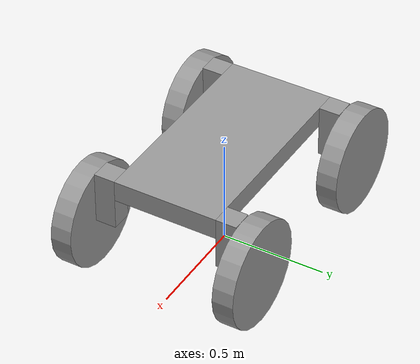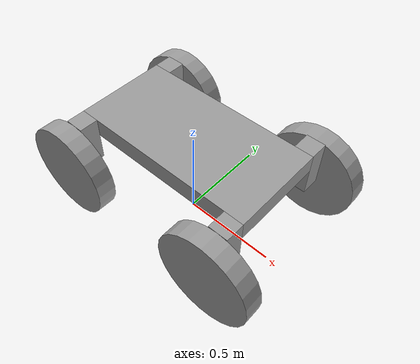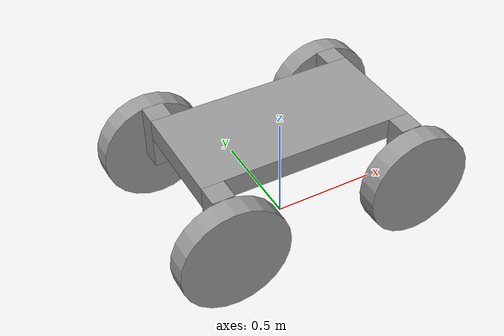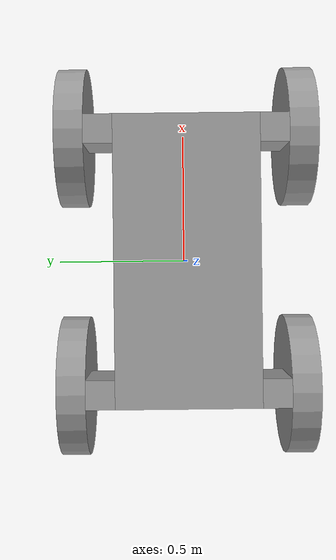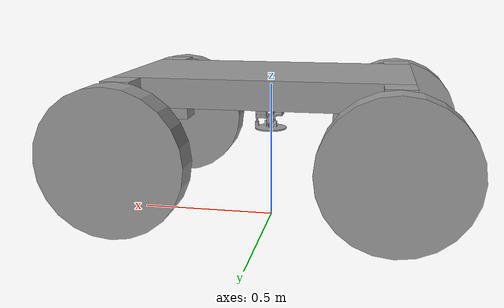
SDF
<?xml version='1.0'?>
<sdf version='1.7'>
  <model name='cart1'>
    <link name='link_0'>
      <inertial>
        <mass>1</mass>
        <inertia>
          <ixx>0.166667</ixx>
          <ixy>0</ixy>
          <ixz>0</ixz>
          <iyy>0.166667</iyy>
          <iyz>0</iyz>
          <izz>0.166667</izz>
        </inertia>
        <pose>0 0 0 0 -0 0</pose>
      </inertial>
      <pose>-0 0 0.5 0 -0 0</pose>
      <gravity>1</gravity>
      <self_collide>0</self_collide>
      <kinematic>0</kinematic>
      <enable_wind>0</enable_wind>
      <visual name='visual'>
        <pose>0 0 0 0 -0 0</pose>
        <geometry>
          <box>
            <size>1 0.5 0.1</size>
          </box>
        </geometry>
        <material>
          <lighting>1</lighting>
          <script>
            <uri>file://media/materials/scripts/gazebo.material</uri>
            <name>Gazebo/Grey</name>
          </script>
          <shader type='pixel'>
            <normal_map>__default__</normal_map>
          </shader>
          <ambient>0.3 0.3 0.3 1</ambient>
          <diffuse>0.7 0.7 0.7 1</diffuse>
          <specular>0.01 0.01 0.01 1</specular>
          <emissive>0 0 0 1</emissive>
        </material>
        <transparency>0</transparency>
        <cast_shadows>1</cast_shadows>
      </visual>
      <collision name='collision'>
        <laser_retro>0</laser_retro>
        <max_contacts>10</max_contacts>
        <pose>0 0 0 0 -0 0</pose>
        <geometry>
          <box>
            <size>1 0.5 0.1</size>
          </box>
        </geometry>
        <surface>
          <friction>
            <ode>
              <mu>1</mu>
              <mu2>1</mu2>
              <fdir1>0 0 0</fdir1>
              <slip1>0</slip1>
              <slip2>0</slip2>
            </ode>
            <torsional>
              <coefficient>1</coefficient>
              <patch_radius>0</patch_radius>
              <surface_radius>0</surface_radius>
              <use_patch_radius>1</use_patch_radius>
              <ode>
                <slip>0</slip>
              </ode>
            </torsional>
          </friction>
          <bounce>
            <restitution_coefficient>0</restitution_coefficient>
            <threshold>1e+06</threshold>
          </bounce>
          <contact>
            <collide_without_contact>0</collide_without_contact>
            <collide_without_contact_bitmask>1</collide_without_contact_bitmask>
            <collide_bitmask>1</collide_bitmask>
            <ode>
              <soft_cfm>0</soft_cfm>
              <soft_erp>0.2</soft_erp>
              <kp>1e+13</kp>
              <kd>1</kd>
              <max_vel>0.01</max_vel>
              <min_depth>0</min_depth>
            </ode>
            <bullet>
              <split_impulse>1</split_impulse>
              <split_impulse_penetration_threshold>-0.01</split_impulse_penetration_threshold>
              <soft_cfm>0</soft_cfm>
              <soft_erp>0.2</soft_erp>
              <kp>1e+13</kp>
              <kd>1</kd>
            </bullet>
          </contact>
        </surface>
      </collision>
    </link>
    <link name='link_0_0_clone'>
      <inertial>
        <mass>0.05</mass>
        <inertia>
          <ixx>0.00833333</ixx>
          <ixy>0</ixy>
          <ixz>0</ixz>
          <iyy>0.00833333</iyy>
          <iyz>0</iyz>
          <izz>0.00833333</izz>
        </inertia>
        <pose>0 0 0 0 -0 0</pose>
      </inertial>
      <pose>-0.45 -0.3 0.425 0 -0 0</pose>
      <gravity>1</gravity>
      <self_collide>0</self_collide>
      <kinematic>0</kinematic>
      <enable_wind>0</enable_wind>
      <visual name='visual_0'>
        <pose>0 0 0 0 -0 0</pose>
        <geometry>
          <box>
            <size>0.1 0.1 0.25</size>
          </box>
        </geometry>
        <material>
          <lighting>1</lighting>
          <script>
            <uri>file://media/materials/scripts/gazebo.material</uri>
            <name>Gazebo/Grey</name>
          </script>
          <shader type='pixel'>
            <normal_map>__default__</normal_map>
          </shader>
          <ambient>0.3 0.3 0.3 1</ambient>
          <diffuse>0.7 0.7 0.7 1</diffuse>
          <specular>0.01 0.01 0.01 1</specular>
          <emissive>0 0 0 1</emissive>
        </material>
        <transparency>0</transparency>
        <cast_shadows>1</cast_shadows>
      </visual>
      <collision name='collision'>
        <laser_retro>0</laser_retro>
        <max_contacts>10</max_contacts>
        <pose>0 0 0 0 -0 0</pose>
        <geometry>
          <box>
            <size>0.1 0.1 0.25</size>
          </box>
        </geometry>
        <surface>
          <friction>
            <ode>
              <mu>1</mu>
              <mu2>1</mu2>
              <fdir1>0 0 0</fdir1>
              <slip1>0</slip1>
              <slip2>0</slip2>
            </ode>
            <torsional>
              <coefficient>1</coefficient>
              <patch_radius>0</patch_radius>
              <surface_radius>0</surface_radius>
              <use_patch_radius>1</use_patch_radius>
              <ode>
                <slip>0</slip>
              </ode>
            </torsional>
          </friction>
          <bounce>
            <restitution_coefficient>0</restitution_coefficient>
            <threshold>1e+06</threshold>
          </bounce>
          <contact>
            <collide_without_contact>0</collide_without_contact>
            <collide_without_contact_bitmask>1</collide_without_contact_bitmask>
            <collide_bitmask>1</collide_bitmask>
            <ode>
              <soft_cfm>0</soft_cfm>
              <soft_erp>0.2</soft_erp>
              <kp>1e+13</kp>
              <kd>1</kd>
              <max_vel>0.01</max_vel>
              <min_depth>0</min_depth>
            </ode>
            <bullet>
              <split_impulse>1</split_impulse>
              <split_impulse_penetration_threshold>-0.01</split_impulse_penetration_threshold>
              <soft_cfm>0</soft_cfm>
              <soft_erp>0.2</soft_erp>
              <kp>1e+13</kp>
              <kd>1</kd>
            </bullet>
          </contact>
        </surface>
      </collision>
    </link>
    <link name='link_0_0_clone_0'>
      <inertial>
        <mass>0.05</mass>
        <inertia>
          <ixx>0.00833333</ixx>
          <ixy>0</ixy>
          <ixz>0</ixz>
          <iyy>0.00833333</iyy>
          <iyz>0</iyz>
          <izz>0.00833333</izz>
        </inertia>
        <pose>0 0 0 0 -0 0</pose>
      </inertial>
      <pose>0.45 -0.3 0.425 0 -0 0</pose>
      <gravity>1</gravity>
      <self_collide>0</self_collide>
      <kinematic>0</kinematic>
      <enable_wind>0</enable_wind>
      <visual name='visual_0'>
        <pose>0 0 0 0 -0 0</pose>
        <geometry>
          <box>
            <size>0.1 0.1 0.25</size>
          </box>
        </geometry>
        <material>
          <lighting>1</lighting>
          <script>
            <uri>file://media/materials/scripts/gazebo.material</uri>
            <name>Gazebo/Grey</name>
          </script>
          <shader type='pixel'>
            <normal_map>__default__</normal_map>
          </shader>
          <ambient>0.3 0.3 0.3 1</ambient>
          <diffuse>0.7 0.7 0.7 1</diffuse>
          <specular>0.01 0.01 0.01 1</specular>
          <emissive>0 0 0 1</emissive>
        </material>
        <transparency>0</transparency>
        <cast_shadows>1</cast_shadows>
      </visual>
      <collision name='collision'>
        <laser_retro>0</laser_retro>
        <max_contacts>10</max_contacts>
        <pose>0 0 0 0 -0 0</pose>
        <geometry>
          <box>
            <size>0.1 0.1 0.25</size>
          </box>
        </geometry>
        <surface>
          <friction>
            <ode>
              <mu>1</mu>
              <mu2>1</mu2>
              <fdir1>0 0 0</fdir1>
              <slip1>0</slip1>
              <slip2>0</slip2>
            </ode>
            <torsional>
              <coefficient>1</coefficient>
              <patch_radius>0</patch_radius>
              <surface_radius>0</surface_radius>
              <use_patch_radius>1</use_patch_radius>
              <ode>
                <slip>0</slip>
              </ode>
            </torsional>
          </friction>
          <bounce>
            <restitution_coefficient>0</restitution_coefficient>
            <threshold>1e+06</threshold>
          </bounce>
          <contact>
            <collide_without_contact>0</collide_without_contact>
            <collide_without_contact_bitmask>1</collide_without_contact_bitmask>
            <collide_bitmask>1</collide_bitmask>
            <ode>
              <soft_cfm>0</soft_cfm>
              <soft_erp>0.2</soft_erp>
              <kp>1e+13</kp>
              <kd>1</kd>
              <max_vel>0.01</max_vel>
              <min_depth>0</min_depth>
            </ode>
            <bullet>
              <split_impulse>1</split_impulse>
              <split_impulse_penetration_threshold>-0.01</split_impulse_penetration_threshold>
              <soft_cfm>0</soft_cfm>
              <soft_erp>0.2</soft_erp>
              <kp>1e+13</kp>
              <kd>1</kd>
            </bullet>
          </contact>
        </surface>
      </collision>
    </link>
    <link name='link_0_0_clone_1'>
      <inertial>
        <mass>0.05</mass>
        <inertia>
          <ixx>0.00833333</ixx>
          <ixy>0</ixy>
          <ixz>0</ixz>
          <iyy>0.00833333</iyy>
          <iyz>0</iyz>
          <izz>0.00833333</izz>
        </inertia>
        <pose>0 0 0 0 -0 0</pose>
      </inertial>
      <pose>0.45 0.3 0.425 0 -0 0</pose>
      <gravity>1</gravity>
      <self_collide>0</self_collide>
      <kinematic>0</kinematic>
      <enable_wind>0</enable_wind>
      <visual name='visual_0'>
        <pose>0 0 0 0 -0 0</pose>
        <geometry>
          <box>
            <size>0.1 0.1 0.25</size>
          </box>
        </geometry>
        <material>
          <lighting>1</lighting>
          <script>
            <uri>file://media/materials/scripts/gazebo.material</uri>
            <name>Gazebo/Grey</name>
          </script>
          <shader type='pixel'>
            <normal_map>__default__</normal_map>
          </shader>
          <ambient>0.3 0.3 0.3 1</ambient>
          <diffuse>0.7 0.7 0.7 1</diffuse>
          <specular>0.01 0.01 0.01 1</specular>
          <emissive>0 0 0 1</emissive>
        </material>
        <transparency>0</transparency>
        <cast_shadows>1</cast_shadows>
      </visual>
      <collision name='collision'>
        <laser_retro>0</laser_retro>
        <max_contacts>10</max_contacts>
        <pose>0 0 0 0 -0 0</pose>
        <geometry>
          <box>
            <size>0.1 0.1 0.25</size>
          </box>
        </geometry>
        <surface>
          <friction>
            <ode>
              <mu>1</mu>
              <mu2>1</mu2>
              <fdir1>0 0 0</fdir1>
              <slip1>0</slip1>
              <slip2>0</slip2>
            </ode>
            <torsional>
              <coefficient>1</coefficient>
              <patch_radius>0</patch_radius>
              <surface_radius>0</surface_radius>
              <use_patch_radius>1</use_patch_radius>
              <ode>
                <slip>0</slip>
              </ode>
            </torsional>
          </friction>
          <bounce>
            <restitution_coefficient>0</restitution_coefficient>
            <threshold>1e+06</threshold>
          </bounce>
          <contact>
            <collide_without_contact>0</collide_without_contact>
            <collide_without_contact_bitmask>1</collide_without_contact_bitmask>
            <collide_bitmask>1</collide_bitmask>
            <ode>
              <soft_cfm>0</soft_cfm>
              <soft_erp>0.2</soft_erp>
              <kp>1e+13</kp>
              <kd>1</kd>
              <max_vel>0.01</max_vel>
              <min_depth>0</min_depth>
            </ode>
            <bullet>
              <split_impulse>1</split_impulse>
              <split_impulse_penetration_threshold>-0.01</split_impulse_penetration_threshold>
              <soft_cfm>0</soft_cfm>
              <soft_erp>0.2</soft_erp>
              <kp>1e+13</kp>
              <kd>1</kd>
            </bullet>
          </contact>
        </surface>
      </collision>
    </link>
    <link name='link_0_0_clone_2'>
      <inertial>
        <mass>0.05</mass>
        <inertia>
          <ixx>0.00833333</ixx>
          <ixy>0</ixy>
          <ixz>0</ixz>
          <iyy>0.00833333</iyy>
          <iyz>0</iyz>
          <izz>0.00833333</izz>
        </inertia>
        <pose>0 0 0 0 -0 0</pose>
      </inertial>
      <pose>-0.45 0.3 0.425 0 -0 0</pose>
      <gravity>1</gravity>
      <self_collide>0</self_collide>
      <kinematic>0</kinematic>
      <enable_wind>0</enable_wind>
      <visual name='visual_0'>
        <pose>0 0 0 0 -0 0</pose>
        <geometry>
          <box>
            <size>0.1 0.1 0.25</size>
          </box>
        </geometry>
        <material>
          <lighting>1</lighting>
          <script>
            <uri>file://media/materials/scripts/gazebo.material</uri>
            <name>Gazebo/Grey</name>
          </script>
          <shader type='pixel'>
            <normal_map>__default__</normal_map>
          </shader>
          <ambient>0.3 0.3 0.3 1</ambient>
          <diffuse>0.7 0.7 0.7 1</diffuse>
          <specular>0.01 0.01 0.01 1</specular>
          <emissive>0 0 0 1</emissive>
        </material>
        <transparency>0</transparency>
        <cast_shadows>1</cast_shadows>
      </visual>
      <collision name='collision'>
        <laser_retro>0</laser_retro>
        <max_contacts>10</max_contacts>
        <pose>0 0 0 0 -0 0</pose>
        <geometry>
          <box>
            <size>0.1 0.1 0.25</size>
          </box>
        </geometry>
        <surface>
          <friction>
            <ode>
              <mu>1</mu>
              <mu2>1</mu2>
              <fdir1>0 0 0</fdir1>
              <slip1>0</slip1>
              <slip2>0</slip2>
            </ode>
            <torsional>
              <coefficient>1</coefficient>
              <patch_radius>0</patch_radius>
              <surface_radius>0</surface_radius>
              <use_patch_radius>1</use_patch_radius>
              <ode>
                <slip>0</slip>
              </ode>
            </torsional>
          </friction>
          <bounce>
            <restitution_coefficient>0</restitution_coefficient>
            <threshold>1e+06</threshold>
          </bounce>
          <contact>
            <collide_without_contact>0</collide_without_contact>
            <collide_without_contact_bitmask>1</collide_without_contact_bitmask>
            <collide_bitmask>1</collide_bitmask>
            <ode>
              <soft_cfm>0</soft_cfm>
              <soft_erp>0.2</soft_erp>
              <kp>1e+13</kp>
              <kd>1</kd>
              <max_vel>0.01</max_vel>
              <min_depth>0</min_depth>
            </ode>
            <bullet>
              <split_impulse>1</split_impulse>
              <split_impulse_penetration_threshold>-0.01</split_impulse_penetration_threshold>
              <soft_cfm>0</soft_cfm>
              <soft_erp>0.2</soft_erp>
              <kp>1e+13</kp>
              <kd>1</kd>
            </bullet>
          </contact>
        </surface>
      </collision>
    </link>
    <link name='link_2_clone'>
      <inertial>
        <mass>0.1</mass>
        <inertia>
          <ixx>0.0145833</ixx>
          <ixy>0</ixy>
          <ixz>0</ixz>
          <iyy>0.0145833</iyy>
          <iyz>0</iyz>
          <izz>0.0125</izz>
        </inertia>
        <pose>0 0 0 0 -0 0</pose>
      </inertial>
      <pose>-0.45 0.400024 0.3 1.5707 -0 0</pose>
      <gravity>1</gravity>
      <self_collide>0</self_collide>
      <kinematic>0</kinematic>
      <enable_wind>0</enable_wind>
      <visual name='visual'>
        <pose>0 0 0 0 -0 0</pose>
        <geometry>
          <cylinder>
            <radius>0.25</radius>
            <length>0.1</length>
          </cylinder>
        </geometry>
        <material>
          <lighting>1</lighting>
          <script>
            <uri>file://media/materials/scripts/gazebo.material</uri>
            <name>Gazebo/Grey</name>
          </script>
          <shader type='pixel'>
            <normal_map>__default__</normal_map>
          </shader>
          <ambient>0.3 0.3 0.3 1</ambient>
          <diffuse>0.7 0.7 0.7 1</diffuse>
          <specular>0.01 0.01 0.01 1</specular>
          <emissive>0 0 0 1</emissive>
        </material>
        <transparency>0</transparency>
        <cast_shadows>1</cast_shadows>
      </visual>
      <collision name='collision'>
        <laser_retro>0</laser_retro>
        <max_contacts>10</max_contacts>
        <pose>0 0 0 0 -0 0</pose>
        <geometry>
          <cylinder>
            <radius>0.25</radius>
            <length>0.1</length>
          </cylinder>
        </geometry>
        <surface>
          <friction>
            <ode>
              <mu>1</mu>
              <mu2>1</mu2>
              <fdir1>0 0 0</fdir1>
              <slip1>0</slip1>
              <slip2>0</slip2>
            </ode>
            <torsional>
              <coefficient>1</coefficient>
              <patch_radius>0</patch_radius>
              <surface_radius>0</surface_radius>
              <use_patch_radius>1</use_patch_radius>
              <ode>
                <slip>0</slip>
              </ode>
            </torsional>
          </friction>
          <bounce>
            <restitution_coefficient>0</restitution_coefficient>
            <threshold>1e+06</threshold>
          </bounce>
          <contact>
            <collide_without_contact>0</collide_without_contact>
            <collide_without_contact_bitmask>1</collide_without_contact_bitmask>
            <collide_bitmask>1</collide_bitmask>
            <ode>
              <soft_cfm>0</soft_cfm>
              <soft_erp>0.2</soft_erp>
              <kp>1e+13</kp>
              <kd>1</kd>
              <max_vel>0.01</max_vel>
              <min_depth>0</min_depth>
            </ode>
            <bullet>
              <split_impulse>1</split_impulse>
              <split_impulse_penetration_threshold>-0.01</split_impulse_penetration_threshold>
              <soft_cfm>0</soft_cfm>
              <soft_erp>0.2</soft_erp>
              <kp>1e+13</kp>
              <kd>1</kd>
            </bullet>
          </contact>
        </surface>
      </collision>
    </link>
    <link name='link_2_clone_0'>
      <inertial>
        <mass>0.1</mass>
        <inertia>
          <ixx>0.0145833</ixx>
          <ixy>0</ixy>
          <ixz>0</ixz>
          <iyy>0.0145833</iyy>
          <iyz>0</iyz>
          <izz>0.0125</izz>
        </inertia>
        <pose>0 0 0 0 -0 0</pose>
      </inertial>
      <pose>-0.45 -0.400024 0.3 1.5707 -0 0</pose>
      <gravity>1</gravity>
      <self_collide>0</self_collide>
      <kinematic>0</kinematic>
      <enable_wind>0</enable_wind>
      <visual name='visual'>
        <pose>0 0 0 0 -0 0</pose>
        <geometry>
          <cylinder>
            <radius>0.25</radius>
            <length>0.1</length>
          </cylinder>
        </geometry>
        <material>
          <lighting>1</lighting>
          <script>
            <uri>file://media/materials/scripts/gazebo.material</uri>
            <name>Gazebo/Grey</name>
          </script>
          <shader type='pixel'>
            <normal_map>__default__</normal_map>
          </shader>
          <ambient>0.3 0.3 0.3 1</ambient>
          <diffuse>0.7 0.7 0.7 1</diffuse>
          <specular>0.01 0.01 0.01 1</specular>
          <emissive>0 0 0 1</emissive>
        </material>
        <transparency>0</transparency>
        <cast_shadows>1</cast_shadows>
      </visual>
      <collision name='collision'>
        <laser_retro>0</laser_retro>
        <max_contacts>10</max_contacts>
        <pose>0 0 0 0 -0 0</pose>
        <geometry>
          <cylinder>
            <radius>0.25</radius>
            <length>0.1</length>
          </cylinder>
        </geometry>
        <surface>
          <friction>
            <ode>
              <mu>1</mu>
              <mu2>1</mu2>
              <fdir1>0 0 0</fdir1>
              <slip1>0</slip1>
              <slip2>0</slip2>
            </ode>
            <torsional>
              <coefficient>1</coefficient>
              <patch_radius>0</patch_radius>
              <surface_radius>0</surface_radius>
              <use_patch_radius>1</use_patch_radius>
              <ode>
                <slip>0</slip>
              </ode>
            </torsional>
          </friction>
          <bounce>
            <restitution_coefficient>0</restitution_coefficient>
            <threshold>1e+06</threshold>
          </bounce>
          <contact>
            <collide_without_contact>0</collide_without_contact>
            <collide_without_contact_bitmask>1</collide_without_contact_bitmask>
            <collide_bitmask>1</collide_bitmask>
            <ode>
              <soft_cfm>0</soft_cfm>
              <soft_erp>0.2</soft_erp>
              <kp>1e+13</kp>
              <kd>1</kd>
              <max_vel>0.01</max_vel>
              <min_depth>0</min_depth>
            </ode>
            <bullet>
              <split_impulse>1</split_impulse>
              <split_impulse_penetration_threshold>-0.01</split_impulse_penetration_threshold>
              <soft_cfm>0</soft_cfm>
              <soft_erp>0.2</soft_erp>
              <kp>1e+13</kp>
              <kd>1</kd>
            </bullet>
          </contact>
        </surface>
      </collision>
    </link>
    <link name='link_2_clone_1'>
      <inertial>
        <mass>0.1</mass>
        <inertia>
          <ixx>0.0145833</ixx>
          <ixy>0</ixy>
          <ixz>0</ixz>
          <iyy>0.0145833</iyy>
          <iyz>0</iyz>
          <izz>0.0125</izz>
        </inertia>
        <pose>0 0 0 0 -0 0</pose>
      </inertial>
      <pose>0.45 -0.400024 0.3 1.5707 -0 0</pose>
      <gravity>1</gravity>
      <self_collide>0</self_collide>
      <kinematic>0</kinematic>
      <enable_wind>0</enable_wind>
      <visual name='visual'>
        <pose>0 0 0 0 -0 0</pose>
        <geometry>
          <cylinder>
            <radius>0.25</radius>
            <length>0.1</length>
          </cylinder>
        </geometry>
        <material>
          <lighting>1</lighting>
          <script>
            <uri>file://media/materials/scripts/gazebo.material</uri>
            <name>Gazebo/Grey</name>
          </script>
          <shader type='pixel'>
            <normal_map>__default__</normal_map>
          </shader>
          <ambient>0.3 0.3 0.3 1</ambient>
          <diffuse>0.7 0.7 0.7 1</diffuse>
          <specular>0.01 0.01 0.01 1</specular>
          <emissive>0 0 0 1</emissive>
        </material>
        <transparency>0</transparency>
        <cast_shadows>1</cast_shadows>
      </visual>
      <collision name='collision'>
        <laser_retro>0</laser_retro>
        <max_contacts>10</max_contacts>
        <pose>0 0 0 0 -0 0</pose>
        <geometry>
          <cylinder>
            <radius>0.25</radius>
            <length>0.1</length>
          </cylinder>
        </geometry>
        <surface>
          <friction>
            <ode>
              <mu>1</mu>
              <mu2>1</mu2>
              <fdir1>0 0 0</fdir1>
              <slip1>0</slip1>
              <slip2>0</slip2>
            </ode>
            <torsional>
              <coefficient>1</coefficient>
              <patch_radius>0</patch_radius>
              <surface_radius>0</surface_radius>
              <use_patch_radius>1</use_patch_radius>
              <ode>
                <slip>0</slip>
              </ode>
            </torsional>
          </friction>
          <bounce>
            <restitution_coefficient>0</restitution_coefficient>
            <threshold>1e+06</threshold>
          </bounce>
          <contact>
            <collide_without_contact>0</collide_without_contact>
            <collide_without_contact_bitmask>1</collide_without_contact_bitmask>
            <collide_bitmask>1</collide_bitmask>
            <ode>
              <soft_cfm>0</soft_cfm>
              <soft_erp>0.2</soft_erp>
              <kp>1e+13</kp>
              <kd>1</kd>
              <max_vel>0.01</max_vel>
              <min_depth>0</min_depth>
            </ode>
            <bullet>
              <split_impulse>1</split_impulse>
              <split_impulse_penetration_threshold>-0.01</split_impulse_penetration_threshold>
              <soft_cfm>0</soft_cfm>
              <soft_erp>0.2</soft_erp>
              <kp>1e+13</kp>
              <kd>1</kd>
            </bullet>
          </contact>
        </surface>
      </collision>
    </link>
    <link name='link_2_clone_2'>
      <inertial>
        <mass>0.1</mass>
        <inertia>
          <ixx>0.0145833</ixx>
          <ixy>0</ixy>
          <ixz>0</ixz>
          <iyy>0.0145833</iyy>
          <iyz>0</iyz>
          <izz>0.0125</izz>
        </inertia>
        <pose>0 0 0 0 -0 0</pose>
      </inertial>
      <pose>0.45 0.400024 0.3 1.5707 -0 0</pose>
      <gravity>1</gravity>
      <self_collide>0</self_collide>
      <kinematic>0</kinematic>
      <enable_wind>0</enable_wind>
      <visual name='visual'>
        <pose>0 0 0 0 -0 0</pose>
        <geometry>
          <cylinder>
            <radius>0.25</radius>
            <length>0.1</length>
          </cylinder>
        </geometry>
        <material>
          <lighting>1</lighting>
          <script>
            <uri>file://media/materials/scripts/gazebo.material</uri>
            <name>Gazebo/Grey</name>
          </script>
          <shader type='pixel'>
            <normal_map>__default__</normal_map>
          </shader>
          <ambient>0.3 0.3 0.3 1</ambient>
          <diffuse>0.7 0.7 0.7 1</diffuse>
          <specular>0.01 0.01 0.01 1</specular>
          <emissive>0 0 0 1</emissive>
        </material>
        <transparency>0</transparency>
        <cast_shadows>1</cast_shadows>
      </visual>
      <collision name='collision'>
        <laser_retro>0</laser_retro>
        <max_contacts>10</max_contacts>
        <pose>0 0 0 0 -0 0</pose>
        <geometry>
          <cylinder>
            <radius>0.25</radius>
            <length>0.1</length>
          </cylinder>
        </geometry>
        <surface>
          <friction>
            <ode>
              <mu>1</mu>
              <mu2>1</mu2>
              <fdir1>0 0 0</fdir1>
              <slip1>0</slip1>
              <slip2>0</slip2>
            </ode>
            <torsional>
              <coefficient>1</coefficient>
              <patch_radius>0</patch_radius>
              <surface_radius>0</surface_radius>
              <use_patch_radius>1</use_patch_radius>
              <ode>
                <slip>0</slip>
              </ode>
            </torsional>
          </friction>
          <bounce>
            <restitution_coefficient>0</restitution_coefficient>
            <threshold>1e+06</threshold>
          </bounce>
          <contact>
            <collide_without_contact>0</collide_without_contact>
            <collide_without_contact_bitmask>1</collide_without_contact_bitmask>
            <collide_bitmask>1</collide_bitmask>
            <ode>
              <soft_cfm>0</soft_cfm>
              <soft_erp>0.2</soft_erp>
              <kp>1e+13</kp>
              <kd>1</kd>
              <max_vel>0.01</max_vel>
              <min_depth>0</min_depth>
            </ode>
            <bullet>
              <split_impulse>1</split_impulse>
              <split_impulse_penetration_threshold>-0.01</split_impulse_penetration_threshold>
              <soft_cfm>0</soft_cfm>
              <soft_erp>0.2</soft_erp>
              <kp>1e+13</kp>
              <kd>1</kd>
            </bullet>
          </contact>
        </surface>
      </collision>
    </link>
    <joint name='front_right' type='revolute'>
      <parent>link_0_0_clone_0</parent>
      <child>link_2_clone_1</child>
      <pose>0 0 0 0 -0 0</pose>
      <axis>
        <xyz>0 0 -1</xyz>
        <limit>
          <lower>-1.79769e+308</lower>
          <upper>1.79769e+308</upper>
          <effort>-1</effort>
          <velocity>-1</velocity>
        </limit>
        <dynamics>
          <spring_reference>0</spring_reference>
          <spring_stiffness>0</spring_stiffness>
          <damping>0</damping>
          <friction>0</friction>
        </dynamics>
      </axis>
      <physics>
        <ode>
          <limit>
            <cfm>0</cfm>
            <erp>0.2</erp>
          </limit>
          <suspension>
            <cfm>0</cfm>
            <erp>0.2</erp>
          </suspension>
        </ode>
      </physics>
    </joint>
    <joint name='front_left' type='revolute'>
      <parent>link_0_0_clone_1</parent>
      <child>link_2_clone_2</child>
      <pose>0 0 0 0 -0 0</pose>
      <axis>
        <xyz>0 0 -1</xyz>
        <limit>
          <lower>-1.79769e+308</lower>
          <upper>1.79769e+308</upper>
          <effort>-1</effort>
          <velocity>-1</velocity>
        </limit>
        <dynamics>
          <spring_reference>0</spring_reference>
          <spring_stiffness>0</spring_stiffness>
          <damping>0</damping>
          <friction>0</friction>
        </dynamics>
      </axis>
      <physics>
        <ode>
          <limit>
            <cfm>0</cfm>
            <erp>0.2</erp>
          </limit>
          <suspension>
            <cfm>0</cfm>
            <erp>0.2</erp>
          </suspension>
        </ode>
      </physics>
    </joint>
    <joint name='back_left' type='revolute'>
      <parent>link_0_0_clone_2</parent>
      <child>link_2_clone</child>
      <pose>0 0 0 0 -0 0</pose>
      <axis>
        <xyz>0 0 -1</xyz>
        <limit>
          <lower>-1.79769e+308</lower>
          <upper>1.79769e+308</upper>
          <effort>-1</effort>
          <velocity>-1</velocity>
        </limit>
        <dynamics>
          <spring_reference>0</spring_reference>
          <spring_stiffness>0</spring_stiffness>
          <damping>0</damping>
          <friction>0</friction>
        </dynamics>
      </axis>
      <physics>
        <ode>
          <limit>
            <cfm>0</cfm>
            <erp>0.2</erp>
          </limit>
          <suspension>
            <cfm>0</cfm>
            <erp>0.2</erp>
          </suspension>
        </ode>
      </physics>
    </joint>
    <joint name='back_right' type='revolute'>
      <parent>link_0_0_clone</parent>
      <child>link_2_clone_0</child>
      <pose>0 0 0 0 -0 0</pose>
      <axis>
        <xyz>0 0 -1</xyz>
        <limit>
          <lower>-1.79769e+308</lower>
          <upper>1.79769e+308</upper>
          <effort>-1</effort>
          <velocity>-1</velocity>
        </limit>
        <dynamics>
          <spring_reference>0</spring_reference>
          <spring_stiffness>0</spring_stiffness>
          <damping>0</damping>
          <friction>0</friction>
        </dynamics>
      </axis>
      <physics>
        <ode>
          <limit>
            <cfm>0</cfm>
            <erp>0.2</erp>
          </limit>
          <suspension>
            <cfm>0</cfm>
            <erp>0.2</erp>
          </suspension>
        </ode>
      </physics>
    </joint>
    <joint name='link_0_JOINT_0' type='fixed'>
      <parent>link_0</parent>
      <child>link_0_0_clone</child>
      <pose>0 0.05 0.075 0 -0 0</pose>
      <physics>
        <ode>
          <limit>
            <cfm>0</cfm>
            <erp>0.2</erp>
          </limit>
          <suspension>
            <cfm>0</cfm>
            <erp>0.2</erp>
          </suspension>
        </ode>
      </physics>
    </joint>
    <joint name='link_0_JOINT_1' type='fixed'>
      <parent>link_0</parent>
      <child>link_0_0_clone_0</child>
      <pose>0 0.05 0.075 0 -0 0</pose>
      <physics>
        <ode>
          <limit>
            <cfm>0</cfm>
            <erp>0.2</erp>
          </limit>
          <suspension>
            <cfm>0</cfm>
            <erp>0.2</erp>
          </suspension>
        </ode>
      </physics>
    </joint>
    <joint name='link_0_JOINT_2' type='fixed'>
      <parent>link_0</parent>
      <child>link_0_0_clone_1</child>
      <pose>0 -0.05 0.075 0 -0 0</pose>
      <physics>
        <ode>
          <limit>
            <cfm>0</cfm>
            <erp>0.2</erp>
          </limit>
          <suspension>
            <cfm>0</cfm>
            <erp>0.2</erp>
          </suspension>
        </ode>
      </physics>
    </joint>
    <joint name='link_0_JOINT_3' type='fixed'>
      <parent>link_0</parent>
      <child>link_0_0_clone_2</child>
      <pose>0 -0.05 0.075 0 -0 0</pose>
      <physics>
        <ode>
          <limit>
            <cfm>0</cfm>
            <erp>0.2</erp>
          </limit>
          <suspension>
            <cfm>0</cfm>
            <erp>0.2</erp>
          </suspension>
        </ode>
      </physics>
    </joint>
    <static>0</static>
    <allow_auto_disable>1</allow_auto_disable> -->

  <link name='cam_link'>
    <pose frame=''>0.5 0.0 0.45 0 1.5707 0</pose>
    <inertial>
      <mass>0.1</mass>
      <inertia>
        <ixx>1</ixx>
        <ixy>0</ixy>
        <ixz>0</ixz>
        <iyy>1</iyy>
        <iyz>0</iyz>
        <izz>1</izz>
      </inertia>
      <pose frame=''>0 0 0 0 -0 0</pose>
    </inertial>
    <self_collide>0</self_collide>
    <kinematic>0</kinematic>
    <sensor name='camera1' type='camera'>
      <camera name="head">
        <horizontal_fov>1.3962634</horizontal_fov>
        <image>
          <width>640</width>
          <height>480</height>
          <format>R8G8B8</format>
        </image>
        <clip>
          <near>0.02</near>
          <far>300</far>
        </clip>
      </camera>
      <always_on>1</always_on>
      <update_rate>30</update_rate>
      <visualize>1</visualize>
      <plugin name="camera_controller" filename="libgazebo_ros_camera.so">
      <alwaysOn>true</alwaysOn>
      <updateRate>0.0</updateRate>
      <cameraName>camera</cameraName>
      <imageTopicName>image_raw</imageTopicName>
      <cameraInfoTopicName>camera_info</cameraInfoTopicName>
      <frameName>camera_link</frameName>
      <hackBaseline>0.07</hackBaseline>
      <distortionK1>0.0</distortionK1>
      <distortionK2>0.0</distortionK2>
      <distortionK3>0.0</distortionK3>
      <distortionT1>0.0</distortionT1>
      <distortionT2>0.0</distortionT2>
    </plugin>
    </sensor>
    </link>

    <joint name="cam_link_joint" type="fixed">
      <child>cam_link</child>
      <parent>link_0</parent>
      <pose>0 0 0 0 3.1414 0</pose>

    </joint>

    <plugin name='pose_and_vel' filename='libpose_and_vel.so'>
      <namespace_model>both</namespace_model>
      <activate_pid_control>yes</activate_pid_control>
      <kp>1</kp>
      <ki>0</ki>
      <kd>0</kd>
    </plugin>

    <plugin name="skid_steer_drive_controller" filename="libgazebo_ros_skid_steer_drive.so">
      <updateRate>100.0</updateRate>
      <robotNamespace>/</robotNamespace>
      <leftFrontJoint>front_left</leftFrontJoint>
      <rightFrontJoint>front_right</rightFrontJoint>
      <leftRearJoint>back_left</leftRearJoint>
      <rightRearJoint>back_right</rightRearJoint>
      <wheelSeparation>0.8</wheelSeparation>
      <wheelDiameter>0.5</wheelDiameter>
      <robotBaseFrame>link_0</robotBaseFrame>
      <torque>20</torque>
      <topicName>cmd_vel</topicName>
      <broadcastTF>false</broadcastTF>
    </plugin>

    <include>
      <uri>model://2dof_trial1</uri>
      <scale>0.1 0.1 0.1 0 0 0</scale>
       <pose>0.1810 -0.01503 0.33 0 3.1414 0</pose>
    </include>
    <joint name="manipulator" type="fixed">
      <child>2dof_trial1::link_3</child>
      <parent>link_0</parent>
    </joint>

    <link name="hokuyo_link">
      <pose>0 0 0 0 0 0</pose>

      <inertial>
        <mass>0.05</mass>
        <inertia>
          <ixx>0.00833333</ixx>
          <ixy>0</ixy>
          <ixz>0</ixz>
          <iyy>0.00833333</iyy>
          <iyz>0</iyz>
          <izz>0.00833333</izz>
        </inertia>
      </inertial>

      <sensor name="laser" type="ray">
        <pose>0 0 0.3 0 1.5707 0</pose>
        <ray>
          <scan>
            <horizontal>
              <samples>640</samples>
              <resolution>1</resolution>
              <min_angle>0</min_angle>
              <max_angle>0</max_angle>
            </horizontal>
          </scan>
          <range>
            <min>0.08</min>
            <max>10</max>
            <resolution>0.01</resolution>
          </range>
        </ray>
        <plugin name="laser" filename="libRayPlugin.so" />
        <always_on>1</always_on>
        <update_rate>30</update_rate>
        <visualize>true</visualize>
      </sensor>
    </link>

    <joint name="hokuyo_joint" type="fixed">
      <pose>0 0 0 0 3.1414 0</pose>
      <parent>2dof_trial1::link_0</parent>
      <child>hokuyo_link</child>
    </joint>

  </model>
</sdf>

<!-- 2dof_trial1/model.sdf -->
<sdf version='1.7'>
  <model name='2dof_trial1'>
    <link name='link_0'>
      <inertial>
        <mass>0.1</mass>
        <inertia>
          <ixx>0.0166667</ixx>
          <ixy>0</ixy>
          <ixz>0</ixz>
          <iyy>0.0166667</iyy>
          <iyz>0</iyz>
          <izz>0.0166667</izz>
        </inertia>
        <pose>0 0 0 0 -0 0</pose>
      </inertial>
      <pose>0.238173 -0.0306345 -0.0364574 0 -0 1.5707</pose>
      <gravity>1</gravity>
      <self_collide>1</self_collide>
      <kinematic>0</kinematic>
      <enable_wind>0</enable_wind>
      <visual name='visual'>
        <pose>0 0 0 0 -0 0</pose>
        <geometry>
          <mesh>
            <uri>/home/sid/plugin_ws/src/model/models/2dof_trial1/meshes/new_top_fixture.stl</uri>
            <scale>0.001 0.001 0.001</scale>
          </mesh>
        </geometry>
        <material>
          <lighting>1</lighting>
          <script>
            <uri>file://media/materials/scripts/gazebo.material</uri>
            <name>Gazebo/Grey</name>
          </script>
          <shader type='pixel'>
            <normal_map>__default__</normal_map>
          </shader>
          <ambient>0.3 0.3 0.3 1</ambient>
          <diffuse>0.7 0.7 0.7 1</diffuse>
          <specular>0.01 0.01 0.01 1</specular>
          <emissive>0 0 0 1</emissive>
        </material>
        <transparency>0</transparency>
        <cast_shadows>1</cast_shadows>
      </visual>
      <collision name='collision'>
        <laser_retro>0</laser_retro>
        <max_contacts>10</max_contacts>
        <pose>0 0 0 0 -0 0</pose>
        <geometry>
          <mesh>
            <uri>/home/sid/plugin_ws/src/model/models/2dof_trial1/meshes/new_top_fixture.stl</uri>
            <scale>0.001 0.001 0.001</scale>
          </mesh>
        </geometry>
        <surface>
          <friction>
            <ode>
              <mu>1</mu>
              <mu2>1</mu2>
              <fdir1>0 0 0</fdir1>
              <slip1>0</slip1>
              <slip2>0</slip2>
            </ode>
            <torsional>
              <coefficient>1</coefficient>
              <patch_radius>0</patch_radius>
              <surface_radius>0</surface_radius>
              <use_patch_radius>1</use_patch_radius>
              <ode>
                <slip>0</slip>
              </ode>
            </torsional>
          </friction>
          <bounce>
            <restitution_coefficient>0</restitution_coefficient>
            <threshold>1e+06</threshold>
          </bounce>
          <contact>
            <collide_without_contact>0</collide_without_contact>
            <collide_without_contact_bitmask>1</collide_without_contact_bitmask>
            <collide_bitmask>1</collide_bitmask>
            <ode>
              <soft_cfm>0</soft_cfm>
              <soft_erp>0.2</soft_erp>
              <kp>1e+13</kp>
              <kd>1</kd>
              <max_vel>0.01</max_vel>
              <min_depth>0</min_depth>
            </ode>
            <bullet>
              <split_impulse>1</split_impulse>
              <split_impulse_penetration_threshold>-0.01</split_impulse_penetration_threshold>
              <soft_cfm>0</soft_cfm>
              <soft_erp>0.2</soft_erp>
              <kp>1e+13</kp>
              <kd>1</kd>
            </bullet>
          </contact>
        </surface>
      </collision>
    </link>
    <link name='link_1'>
      <inertial>
        <mass>1</mass>
        <inertia>
          <ixx>0.166667</ixx>
          <ixy>0</ixy>
          <ixz>0</ixz>
          <iyy>0.166667</iyy>
          <iyz>0</iyz>
          <izz>0.166667</izz>
        </inertia>
        <pose>0 0 0 0 -0 0</pose>
      </inertial>
      <pose>0.122184 0.0193558 -0.0884696 0 -1e-06 0</pose>
      <gravity>1</gravity>
      <self_collide>1</self_collide>
      <kinematic>0</kinematic>
      <enable_wind>0</enable_wind>
      <visual name='visual'>
        <pose>0 0 0 0 -0 0</pose>
        <geometry>
          <mesh>
            <uri>/home/sid/plugin_ws/src/model/models/2dof_trial1/meshes/link2.stl</uri>
            <scale>0.001 0.001 0.001</scale>
          </mesh>
        </geometry>
        <material>
          <lighting>1</lighting>
          <script>
            <uri>file://media/materials/scripts/gazebo.material</uri>
            <name>Gazebo/Grey</name>
          </script>
          <shader type='pixel'>
            <normal_map>__default__</normal_map>
          </shader>
          <ambient>0.3 0.3 0.3 1</ambient>
          <diffuse>0.7 0.7 0.7 1</diffuse>
          <specular>0.01 0.01 0.01 1</specular>
          <emissive>0 0 0 1</emissive>
        </material>
        <transparency>0</transparency>
        <cast_shadows>1</cast_shadows>
      </visual>
      <collision name='collision'>
        <laser_retro>0</laser_retro>
        <max_contacts>10</max_contacts>
        <pose>0 0 0 0 -0 0</pose>
        <geometry>
          <mesh>
            <uri>/home/sid/plugin_ws/src/model/models/2dof_trial1/meshes/link2.stl</uri>
            <scale>0.001 0.001 0.001</scale>
          </mesh>
        </geometry>
        <surface>
          <friction>
            <ode>
              <mu>1</mu>
              <mu2>1</mu2>
              <fdir1>0 0 0</fdir1>
              <slip1>0</slip1>
              <slip2>0</slip2>
            </ode>
            <torsional>
              <coefficient>1</coefficient>
              <patch_radius>0</patch_radius>
              <surface_radius>0</surface_radius>
              <use_patch_radius>1</use_patch_radius>
              <ode>
                <slip>0</slip>
              </ode>
            </torsional>
          </friction>
          <bounce>
            <restitution_coefficient>0</restitution_coefficient>
            <threshold>1e+06</threshold>
          </bounce>
          <contact>
            <collide_without_contact>0</collide_without_contact>
            <collide_without_contact_bitmask>1</collide_without_contact_bitmask>
            <collide_bitmask>1</collide_bitmask>
            <ode>
              <soft_cfm>0</soft_cfm>
              <soft_erp>0.2</soft_erp>
              <kp>1e+13</kp>
              <kd>1</kd>
              <max_vel>0.01</max_vel>
              <min_depth>0</min_depth>
            </ode>
            <bullet>
              <split_impulse>1</split_impulse>
              <split_impulse_penetration_threshold>-0.01</split_impulse_penetration_threshold>
              <soft_cfm>0</soft_cfm>
              <soft_erp>0.2</soft_erp>
              <kp>1e+13</kp>
              <kd>1</kd>
            </bullet>
          </contact>
        </surface>
      </collision>
    </link>
    <link name='link_1_clone'>
      <inertial>
        <mass>1</mass>
        <inertia>
          <ixx>0.166667</ixx>
          <ixy>0</ixy>
          <ixz>0</ixz>
          <iyy>0.166667</iyy>
          <iyz>0</iyz>
          <izz>0.166667</izz>
        </inertia>
        <pose>0 0 0 0 -0 0</pose>
      </inertial>
      <pose>0.18819 -0.0316639 -0.0884678 0 -0 1.5707</pose>
      <gravity>1</gravity>
      <self_collide>1</self_collide>
      <kinematic>0</kinematic>
      <enable_wind>0</enable_wind>
      <visual name='visual'>
        <pose>0 0 0 0 -0 0</pose>
        <geometry>
          <mesh>
            <uri>/home/sid/plugin_ws/src/model/models/2dof_trial1/meshes/link2.stl</uri>
            <scale>0.001 0.001 0.001</scale>
          </mesh>
        </geometry>
        <material>
          <lighting>1</lighting>
          <script>
            <uri>file://media/materials/scripts/gazebo.material</uri>
            <name>Gazebo/Grey</name>
          </script>
          <shader type='pixel'>
            <normal_map>__default__</normal_map>
          </shader>
          <ambient>0.3 0.3 0.3 1</ambient>
          <diffuse>0.7 0.7 0.7 1</diffuse>
          <specular>0.01 0.01 0.01 1</specular>
          <emissive>0 0 0 1</emissive>
        </material>
        <transparency>0</transparency>
        <cast_shadows>1</cast_shadows>
      </visual>
      <collision name='collision'>
        <laser_retro>0</laser_retro>
        <max_contacts>10</max_contacts>
        <pose>0 0 0 0 -0 0</pose>
        <geometry>
          <mesh>
            <uri>/home/sid/plugin_ws/src/model/models/2dof_trial1/meshes/link2.stl</uri>
            <scale>0.001 0.001 0.001</scale>
          </mesh>
        </geometry>
        <surface>
          <friction>
            <ode>
              <mu>1</mu>
              <mu2>1</mu2>
              <fdir1>0 0 0</fdir1>
              <slip1>0</slip1>
              <slip2>0</slip2>
            </ode>
            <torsional>
              <coefficient>1</coefficient>
              <patch_radius>0</patch_radius>
              <surface_radius>0</surface_radius>
              <use_patch_radius>1</use_patch_radius>
              <ode>
                <slip>0</slip>
              </ode>
            </torsional>
          </friction>
          <bounce>
            <restitution_coefficient>0</restitution_coefficient>
            <threshold>1e+06</threshold>
          </bounce>
          <contact>
            <collide_without_contact>0</collide_without_contact>
            <collide_without_contact_bitmask>1</collide_without_contact_bitmask>
            <collide_bitmask>1</collide_bitmask>
            <ode>
              <soft_cfm>0</soft_cfm>
              <soft_erp>0.2</soft_erp>
              <kp>1e+13</kp>
              <kd>1</kd>
              <max_vel>0.01</max_vel>
              <min_depth>0</min_depth>
            </ode>
            <bullet>
              <split_impulse>1</split_impulse>
              <split_impulse_penetration_threshold>-0.01</split_impulse_penetration_threshold>
              <soft_cfm>0</soft_cfm>
              <soft_erp>0.2</soft_erp>
              <kp>1e+13</kp>
              <kd>1</kd>
            </bullet>
          </contact>
        </surface>
      </collision>
    </link>
    <link name='link_3'>
      <inertial>
        <mass>1</mass>
        <inertia>
          <ixx>0.166667</ixx>
          <ixy>0</ixy>
          <ixz>0</ixz>
          <iyy>0.166667</iyy>
          <iyz>0</iyz>
          <izz>0.166667</izz>
        </inertia>
        <pose>0 0 0 0 -0 0</pose>
      </inertial>
      <pose>0.22197 -0.0227645 -0.0194605 3.14159 0.000193 3.14159</pose>
      <gravity>1</gravity>
      <self_collide>1</self_collide>
      <kinematic>0</kinematic>
      <enable_wind>0</enable_wind>
      <visual name='visual'>
        <pose>0 0 0 0 -0 0</pose>
        <geometry>
          <mesh>
            <uri>/home/sid/plugin_ws/src/model/models/2dof_trial1/meshes/new_bottom_fixture.stl</uri>
            <scale>0.001 0.001 0.001</scale>
          </mesh>
        </geometry>
        <material>
          <lighting>1</lighting>
          <script>
            <uri>file://media/materials/scripts/gazebo.material</uri>
            <name>Gazebo/Grey</name>
          </script>
          <shader type='pixel'>
            <normal_map>__default__</normal_map>
          </shader>
          <ambient>0.3 0.3 0.3 1</ambient>
          <diffuse>0.7 0.7 0.7 1</diffuse>
          <specular>0.01 0.01 0.01 1</specular>
          <emissive>0 0 0 1</emissive>
        </material>
        <transparency>0</transparency>
        <cast_shadows>1</cast_shadows>
      </visual>
      <collision name='collision'>
        <laser_retro>0</laser_retro>
        <max_contacts>10</max_contacts>
        <pose>0 0 0 0 -0 0</pose>
        <geometry>
          <mesh>
            <uri>/home/sid/plugin_ws/src/model/models/2dof_trial1/meshes/new_bottom_fixture.stl</uri>
            <scale>0.001 0.001 0.001</scale>
          </mesh>
        </geometry>
        <surface>
          <friction>
            <ode>
              <mu>1</mu>
              <mu2>1</mu2>
              <fdir1>0 0 0</fdir1>
              <slip1>0</slip1>
              <slip2>0</slip2>
            </ode>
            <torsional>
              <coefficient>1</coefficient>
              <patch_radius>0</patch_radius>
              <surface_radius>0</surface_radius>
              <use_patch_radius>1</use_patch_radius>
              <ode>
                <slip>0</slip>
              </ode>
            </torsional>
          </friction>
          <bounce>
            <restitution_coefficient>0</restitution_coefficient>
            <threshold>1e+06</threshold>
          </bounce>
          <contact>
            <collide_without_contact>0</collide_without_contact>
            <collide_without_contact_bitmask>1</collide_without_contact_bitmask>
            <collide_bitmask>1</collide_bitmask>
            <ode>
              <soft_cfm>0</soft_cfm>
              <soft_erp>0.2</soft_erp>
              <kp>1e+13</kp>
              <kd>1</kd>
              <max_vel>0.01</max_vel>
              <min_depth>0</min_depth>
            </ode>
            <bullet>
              <split_impulse>1</split_impulse>
              <split_impulse_penetration_threshold>-0.01</split_impulse_penetration_threshold>
              <soft_cfm>0</soft_cfm>
              <soft_erp>0.2</soft_erp>
              <kp>1e+13</kp>
              <kd>1</kd>
            </bullet>
          </contact>
        </surface>
      </collision>
    </link>
    <link name='link_4'>
      <inertial>
        <mass>0.1</mass>
        <inertia>
          <ixx>0.0166667</ixx>
          <ixy>0</ixy>
          <ixz>0</ixz>
          <iyy>0.0166667</iyy>
          <iyz>0</iyz>
          <izz>0.0166667</izz>
        </inertia>
        <pose>0 0 0 0 -0 0</pose>
      </inertial>
      <pose>0.175684 0.0223458 -0.0919693 1.5707 -0 3.1414</pose>
      <gravity>1</gravity>
      <self_collide>1</self_collide>
      <kinematic>0</kinematic>
      <enable_wind>0</enable_wind>
      <visual name='visual'>
        <pose>0 0 0 0 -0 0</pose>
        <geometry>
          <mesh>
            <uri>/home/sid/plugin_ws/src/model/models/2dof_trial1/meshes/m_link.stl</uri>
            <scale>0.001 0.001 0.001</scale>
          </mesh>
        </geometry>
        <material>
          <lighting>1</lighting>
          <script>
            <uri>file://media/materials/scripts/gazebo.material</uri>
            <name>Gazebo/Grey</name>
          </script>
          <shader type='pixel'>
            <normal_map>__default__</normal_map>
          </shader>
          <ambient>0.3 0.3 0.3 1</ambient>
          <diffuse>0.7 0.7 0.7 1</diffuse>
          <specular>0.01 0.01 0.01 1</specular>
          <emissive>0 0 0 1</emissive>
        </material>
        <transparency>0</transparency>
        <cast_shadows>1</cast_shadows>
      </visual>
      <collision name='collision'>
        <laser_retro>0</laser_retro>
        <max_contacts>10</max_contacts>
        <pose>0 0 0 0 -0 0</pose>
        <geometry>
          <mesh>
            <uri>/home/sid/plugin_ws/src/model/models/2dof_trial1/meshes/m_link.stl</uri>
            <scale>0.001 0.001 0.001</scale>
          </mesh>
        </geometry>
        <surface>
          <friction>
            <ode>
              <mu>1</mu>
              <mu2>1</mu2>
              <fdir1>0 0 0</fdir1>
              <slip1>0</slip1>
              <slip2>0</slip2>
            </ode>
            <torsional>
              <coefficient>1</coefficient>
              <patch_radius>0</patch_radius>
              <surface_radius>0</surface_radius>
              <use_patch_radius>1</use_patch_radius>
              <ode>
                <slip>0</slip>
              </ode>
            </torsional>
          </friction>
          <bounce>
            <restitution_coefficient>0</restitution_coefficient>
            <threshold>1e+06</threshold>
          </bounce>
          <contact>
            <collide_without_contact>0</collide_without_contact>
            <collide_without_contact_bitmask>1</collide_without_contact_bitmask>
            <collide_bitmask>1</collide_bitmask>
            <ode>
              <soft_cfm>0</soft_cfm>
              <soft_erp>0.2</soft_erp>
              <kp>1e+13</kp>
              <kd>1</kd>
              <max_vel>0.01</max_vel>
              <min_depth>0</min_depth>
            </ode>
            <bullet>
              <split_impulse>1</split_impulse>
              <split_impulse_penetration_threshold>-0.01</split_impulse_penetration_threshold>
              <soft_cfm>0</soft_cfm>
              <soft_erp>0.2</soft_erp>
              <kp>1e+13</kp>
              <kd>1</kd>
            </bullet>
          </contact>
        </surface>
      </collision>
    </link>
    <link name='link_4_clone'>
      <inertial>
        <mass>0.1</mass>
        <inertia>
          <ixx>0.0166667</ixx>
          <ixy>0</ixy>
          <ixz>0</ixz>
          <iyy>0.0166667</iyy>
          <iyz>0</iyz>
          <izz>0.0166667</izz>
        </inertia>
        <pose>0 0 0 0 -0 0</pose>
      </inertial>
      <pose>0.185184 0.0218358 -0.0919675 1.5707 -0 -1.5707</pose>
      <gravity>1</gravity>
      <self_collide>1</self_collide>
      <kinematic>0</kinematic>
      <enable_wind>0</enable_wind>
      <visual name='visual'>
        <pose>0 0 0 0 -0 0</pose>
        <geometry>
          <mesh>
            <uri>/home/sid/plugin_ws/src/model/models/2dof_trial1/meshes/m_link.stl</uri>
            <scale>0.001 0.001 0.001</scale>
          </mesh>
        </geometry>
        <material>
          <lighting>1</lighting>
          <script>
            <uri>file://media/materials/scripts/gazebo.material</uri>
            <name>Gazebo/Grey</name>
          </script>
          <shader type='pixel'>
            <normal_map>__default__</normal_map>
          </shader>
          <ambient>0.3 0.3 0.3 1</ambient>
          <diffuse>0.7 0.7 0.7 1</diffuse>
          <specular>0.01 0.01 0.01 1</specular>
          <emissive>0 0 0 1</emissive>
        </material>
        <transparency>0</transparency>
        <cast_shadows>1</cast_shadows>
      </visual>
      <collision name='collision'>
        <laser_retro>0</laser_retro>
        <max_contacts>10</max_contacts>
        <pose>0 0 0 0 -0 0</pose>
        <geometry>
          <mesh>
            <uri>/home/sid/plugin_ws/src/model/models/2dof_trial1/meshes/m_link.stl</uri>
            <scale>0.001 0.001 0.001</scale>
          </mesh>
        </geometry>
        <surface>
          <friction>
            <ode>
              <mu>1</mu>
              <mu2>1</mu2>
              <fdir1>0 0 0</fdir1>
              <slip1>0</slip1>
              <slip2>0</slip2>
            </ode>
            <torsional>
              <coefficient>1</coefficient>
              <patch_radius>0</patch_radius>
              <surface_radius>0</surface_radius>
              <use_patch_radius>1</use_patch_radius>
              <ode>
                <slip>0</slip>
              </ode>
            </torsional>
          </friction>
          <bounce>
            <restitution_coefficient>0</restitution_coefficient>
            <threshold>1e+06</threshold>
          </bounce>
          <contact>
            <collide_without_contact>0</collide_without_contact>
            <collide_without_contact_bitmask>1</collide_without_contact_bitmask>
            <collide_bitmask>1</collide_bitmask>
            <ode>
              <soft_cfm>0</soft_cfm>
              <soft_erp>0.2</soft_erp>
              <kp>1e+13</kp>
              <kd>1</kd>
              <max_vel>0.01</max_vel>
              <min_depth>0</min_depth>
            </ode>
            <bullet>
              <split_impulse>1</split_impulse>
              <split_impulse_penetration_threshold>-0.01</split_impulse_penetration_threshold>
              <soft_cfm>0</soft_cfm>
              <soft_erp>0.2</soft_erp>
              <kp>1e+13</kp>
              <kd>1</kd>
            </bullet>
          </contact>
        </surface>
      </collision>
    </link>
    <joint name='link_1_JOINT_8' type='ball'>
      <parent>link_1</parent>
      <child>link_0</child>
      <pose>0.0572 0.1085 0.0085 0 -0 0</pose>
      <physics>
        <ode>
          <limit>
            <cfm>0</cfm>
            <erp>0.2</erp>
          </limit>
          <suspension>
            <cfm>0</cfm>
            <erp>0.2</erp>
          </suspension>
        </ode>
      </physics>
    </joint>
    <joint name='link_1_clone_JOINT_7' type='ball'>
      <parent>link_1_clone</parent>
      <child>link_0</child>
      <pose>0.0065 0.0572 0.0085 0 -0 0</pose>
      <physics>
        <ode>
          <limit>
            <cfm>0</cfm>
            <erp>0.2</erp>
          </limit>
          <suspension>
            <cfm>0</cfm>
            <erp>0.2</erp>
          </suspension>
        </ode>
      </physics>
    </joint>
    <joint name='joint2' type='revolute'>
      <parent>link_3</parent>
      <child>link_4_clone</child>
      <pose>0.011 0.011 0.0045 0 -0 0</pose>
      <axis>
        <xyz>0 0 1</xyz>
        <limit>
          <lower>-3.1414</lower>
          <upper>3.1414</upper>
          <effort>1000</effort>
          <velocity>0.1</velocity>
        </limit>
        <dynamics>
          <spring_reference>0</spring_reference>
          <spring_stiffness>0</spring_stiffness>
          <damping>0.7</damping>
          <friction>0</friction>
        </dynamics>
      </axis>
      <physics>
        <ode>
          <limit>
            <cfm>0</cfm>
            <erp>0.2</erp>
          </limit>
          <suspension>
            <cfm>0</cfm>
            <erp>0.2</erp>
          </suspension>
        </ode>
      </physics>
    </joint>
    <joint name='joint1' type='revolute'>
      <parent>link_3</parent>
      <child>link_4</child>
      <pose>0.011 0.011 0.0045 0 -0 0</pose>
      <axis>
        <xyz>0 0 -1</xyz>
        <limit>
          <lower>-3.1414</lower>
          <upper>3.1414</upper>
          <effort>1000</effort>
          <velocity>0.1</velocity>
        </limit>
        <dynamics>
          <spring_reference>0</spring_reference>
          <spring_stiffness>0</spring_stiffness>
          <damping>0.7</damping>
          <friction>0</friction>
        </dynamics>
      </axis>
      <physics>
        <ode>
          <limit>
            <cfm>0</cfm>
            <erp>0.2</erp>
          </limit>
          <suspension>
            <cfm>0</cfm>
            <erp>0.2</erp>
          </suspension>
        </ode>
      </physics>
    </joint>
    <joint name='link_3_JOINT_6' type='universal'>
      <parent>link_3</parent>
      <child>link_0</child>
      <pose>0.0575 0.0575 0.0085 0 -0 0</pose>
      <axis>
        <xyz>1 0 0</xyz>
        <limit>
          <lower>-1.79769e+308</lower>
          <upper>1.79769e+308</upper>
          <effort>-1</effort>
          <velocity>-1</velocity>
        </limit>
        <dynamics>
          <spring_reference>0</spring_reference>
          <spring_stiffness>0</spring_stiffness>
          <damping>0</damping>
          <friction>0</friction>
        </dynamics>
      </axis>
      <axis2>
        <xyz>0 1 0</xyz>
        <limit>
          <lower>-1.79769e+308</lower>
          <upper>1.79769e+308</upper>
          <effort>-1</effort>
          <velocity>-1</velocity>
        </limit>
        <dynamics>
          <spring_reference>0</spring_reference>
          <spring_stiffness>0</spring_stiffness>
          <damping>0</damping>
          <friction>0</friction>
        </dynamics>
      </axis2>
      <physics>
        <ode>
          <limit>
            <cfm>0</cfm>
            <erp>0.2</erp>
          </limit>
          <suspension>
            <cfm>0</cfm>
            <erp>0.2</erp>
          </suspension>
        </ode>
      </physics>
    </joint>
    <joint name='link_4_JOINT_2' type='ball'>
      <parent>link_4</parent>
      <child>link_1</child>
      <pose>0.0075 0.0075 0.0075 0 -0 0</pose>
      <physics>
        <ode>
          <limit>
            <cfm>0</cfm>
            <erp>0.2</erp>
          </limit>
          <suspension>
            <cfm>0</cfm>
            <erp>0.2</erp>
          </suspension>
        </ode>
      </physics>
    </joint>
    <joint name='link_4_clone_JOINT_3' type='ball'>
      <parent>link_4_clone</parent>
      <child>link_1_clone</child>
      <pose>0.0075 0.0075 0.0075 0 -0 0</pose>
      <physics>
        <ode>
          <limit>
            <cfm>0</cfm>
            <erp>0.2</erp>
          </limit>
          <suspension>
            <cfm>0</cfm>
            <erp>0.2</erp>
          </suspension>
        </ode>
      </physics>
    </joint>
    <static>0</static>
    <allow_auto_disable>1</allow_auto_disable>

  </model>
</sdf>
